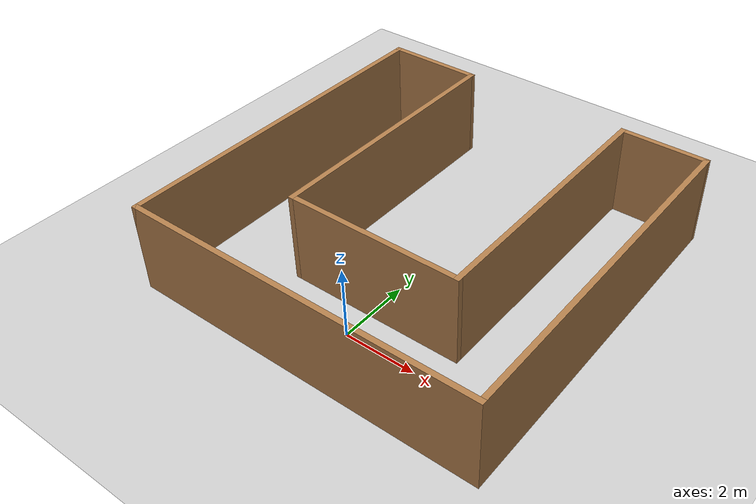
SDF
<sdf version="1.6">
 <world name="default">
  <light name="sun" type="directional">
   <pose>0 0 15 0 -0 0</pose>
   <diffuse>0.8 0.8 0.8 1</diffuse>
   <specular>0.2 0.2 0.2 1</specular>
   <attenuation>
    <range>1000</range>
    <constant>0.9</constant>
    <linear>0.01</linear>
    <quadratic>0.001</quadratic>
   </attenuation>
   <direction>-0.5 0.1 -0.9</direction>
  </light>
  <model name="ground_plane">
   <static>1</static>
   <link name="link">
    <collision name="collision">
     <geometry><plane><normal>0 0 1</normal><size>100 100</size></plane></geometry>
     <surface><friction><ode><mu>100</mu><mu2>50</mu2></ode></friction></surface>
    </collision>
    <visual name="visual">
     <transparency>1</transparency>
     <cast_shadows>0</cast_shadows>
     <geometry><plane><normal>0 0 1</normal><size>100 100</size></plane></geometry>
     <material>
      <script><uri>file://media/materials/scripts/gazebo.material</uri><name>Gazebo/Grey</name></script>
     </material>
    </visual>
   </link>
  </model>
  <gravity>0 0 -9.8</gravity>
  <magnetic_field>6e-06 2.3e-05 -4.2e-05</magnetic_field>
  <atmosphere type="adiabatic"/>
  <physics name="default_physics" default="0" type="ode">
   <max_step_size>0.001</max_step_size>
   <real_time_factor>1</real_time_factor>
   <real_time_update_rate>1000</real_time_update_rate>
  </physics>
  <scene><ambient>0.4 0.4 0.4 1</ambient><background>0.7 0.7 0.7 1</background><shadows>1</shadows></scene>
  <spherical_coordinates>
   <surface_model>EARTH_WGS84</surface_model>
   <latitude_deg>0</latitude_deg>
   <longitude_deg>0</longitude_deg>
   <elevation>0</elevation>
   <heading_deg>0</heading_deg>
  </spherical_coordinates>
  <model name="udacity_world">
   <pose>-0.042646 3.33261 0 0 -0 0</pose>
   <link name="Wall_13">
    <collision name="Wall_13_Collision">
     <geometry><box><size>10 0.15 2.5</size></box></geometry>
     <pose>0 0 1.25 0 -0 0</pose>
    </collision>
    <visual name="Wall_13_Visual">
     <pose>0 0 1.25 0 -0 0</pose>
     <geometry><box><size>10 0.15 2.5</size></box></geometry>
     <material>
      <script><uri>file://media/materials/scripts/gazebo.material</uri><name>Gazebo/Wood</name></script>
      <ambient>0.996078 0.47451 0.0196078 1</ambient>
     </material>
     <meta><layer>0</layer></meta>
    </visual>
    <pose>-4.925 0 0 0 0 -1.5708</pose>
   </link>
   <link name="Wall_14">
    <collision name="Wall_14_Collision">
     <geometry><box><size>10 0.15 2.5</size></box></geometry>
     <pose>0 0 1.25 0 -0 0</pose>
    </collision>
    <visual name="Wall_14_Visual">
     <pose>0 0 1.25 0 -0 0</pose>
     <geometry><box><size>10 0.15 2.5</size></box></geometry>
     <material>
      <script><uri>file://media/materials/scripts/gazebo.material</uri><name>Gazebo/Wood</name></script>
      <ambient>0.996078 0.47451 0.0196078 1</ambient>
     </material>
     <meta><layer>0</layer></meta>
    </visual>
    <pose>0 -4.925 0 0 -0 0</pose>
   </link>
   <link name="Wall_15">
    <collision name="Wall_15_Collision">
     <geometry><box><size>10 0.15 2.5</size></box></geometry>
     <pose>0 0 1.25 0 -0 0</pose>
    </collision>
    <visual name="Wall_15_Visual">
     <pose>0 0 1.25 0 -0 0</pose>
     <geometry><box><size>10 0.15 2.5</size></box></geometry>
     <material>
      <script><uri>file://media/materials/scripts/gazebo.material</uri><name>Gazebo/Wood</name></script>
      <ambient>0.996078 0.47451 0.0196078 1</ambient>
     </material>
     <meta><layer>0</layer></meta>
    </visual>
    <pose>4.925 0 0 0 -0 1.5708</pose>
   </link>
   <link name="Wall_16">
    <collision name="Wall_16_Collision">
     <geometry><box><size>2.5 0.15 2.5</size></box></geometry>
     <pose>0 0 1.25 0 -0 0</pose>
    </collision>
    <visual name="Wall_16_Visual">
     <pose>0 0 1.25 0 -0 0</pose>
     <geometry><box><size>2.5 0.15 2.5</size></box></geometry>
     <material>
      <script><uri>file://media/materials/scripts/gazebo.material</uri><name>Gazebo/Wood</name></script>
      <ambient>0.996078 0.47451 0.0196078 1</ambient>
     </material>
     <meta><layer>0</layer></meta>
    </visual>
    <pose>3.75 4.925 0 0 -0 3.14159</pose>
   </link>
   <link name="Wall_17">
    <collision name="Wall_17_Collision">
     <geometry><box><size>7.5 0.15 2.5</size></box></geometry>
     <pose>0 0 1.25 0 -0 0</pose>
    </collision>
    <visual name="Wall_17_Visual">
     <pose>0 0 1.25 0 -0 0</pose>
     <geometry><box><size>7.5 0.15 2.5</size></box></geometry>
     <material>
      <script><uri>file://media/materials/scripts/gazebo.material</uri><name>Gazebo/Wood</name></script>
      <ambient>0.996078 0.47451 0.0196078 1</ambient>
     </material>
     <meta><layer>0</layer></meta>
    </visual>
    <pose>2.575 1.25 0 0 0 -1.5708</pose>
   </link>
   <link name="Wall_18">
    <collision name="Wall_18_Collision">
     <geometry><box><size>5 0.15 2.5</size></box></geometry>
     <pose>0 0 1.25 0 -0 0</pose>
    </collision>
    <visual name="Wall_18_Visual">
     <pose>0 0 1.25 0 -0 0</pose>
     <geometry><box><size>5 0.15 2.5</size></box></geometry>
     <material>
      <script><uri>file://media/materials/scripts/gazebo.material</uri><name>Gazebo/Wood</name></script>
      <ambient>0.996078 0.47451 0.0196078 1</ambient>
     </material>
     <meta><layer>0</layer></meta>
    </visual>
    <pose>0.15 -2.425 0 0 -0 3.14159</pose>
   </link>
   <link name="Wall_19">
    <collision name="Wall_19_Collision">
     <geometry><box><size>7.5 0.15 2.5</size></box></geometry>
     <pose>0 0 1.25 0 -0 0</pose>
    </collision>
    <visual name="Wall_19_Visual">
     <pose>0 0 1.25 0 -0 0</pose>
     <geometry><box><size>7.5 0.15 2.5</size></box></geometry>
     <material>
      <script><uri>file://media/materials/scripts/gazebo.material</uri><name>Gazebo/Wood</name></script>
      <ambient>0.996078 0.47451 0.0196078 1</ambient>
     </material>
     <meta><layer>0</layer></meta>
    </visual>
    <pose>-2.275 1.25 0 0 -0 1.5708</pose>
   </link>
   <link name="Wall_20">
    <collision name="Wall_20_Collision">
     <geometry><box><size>2.8 0.15 2.5</size></box></geometry>
     <pose>0 0 1.25 0 -0 0</pose>
    </collision>
    <visual name="Wall_20_Visual">
     <pose>0 0 1.25 0 -0 0</pose>
     <geometry><box><size>2.8 0.15 2.5</size></box></geometry>
     <material>
      <script><uri>file://media/materials/scripts/gazebo.material</uri><name>Gazebo/Wood</name></script>
      <ambient>0.996078 0.47451 0.0196078 1</ambient>
     </material>
     <meta><layer>0</layer></meta>
    </visual>
    <pose>-3.6 4.925 0 0 -0 3.14159</pose>
   </link>
   <static>1</static>
  </model>
 </world>
</sdf>
